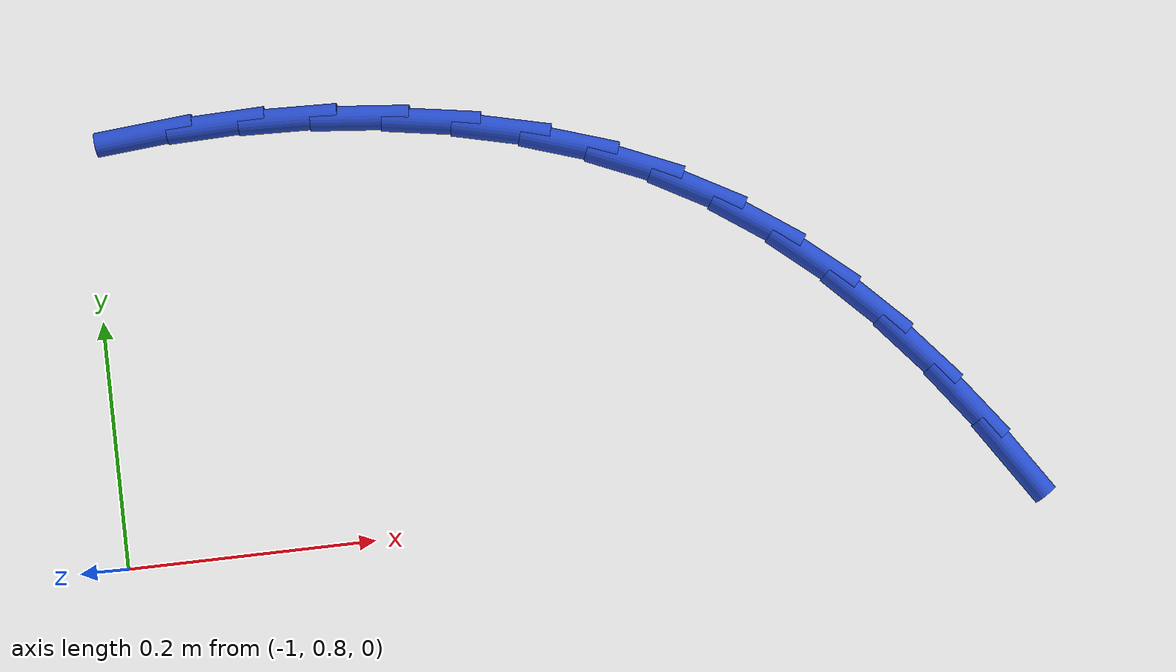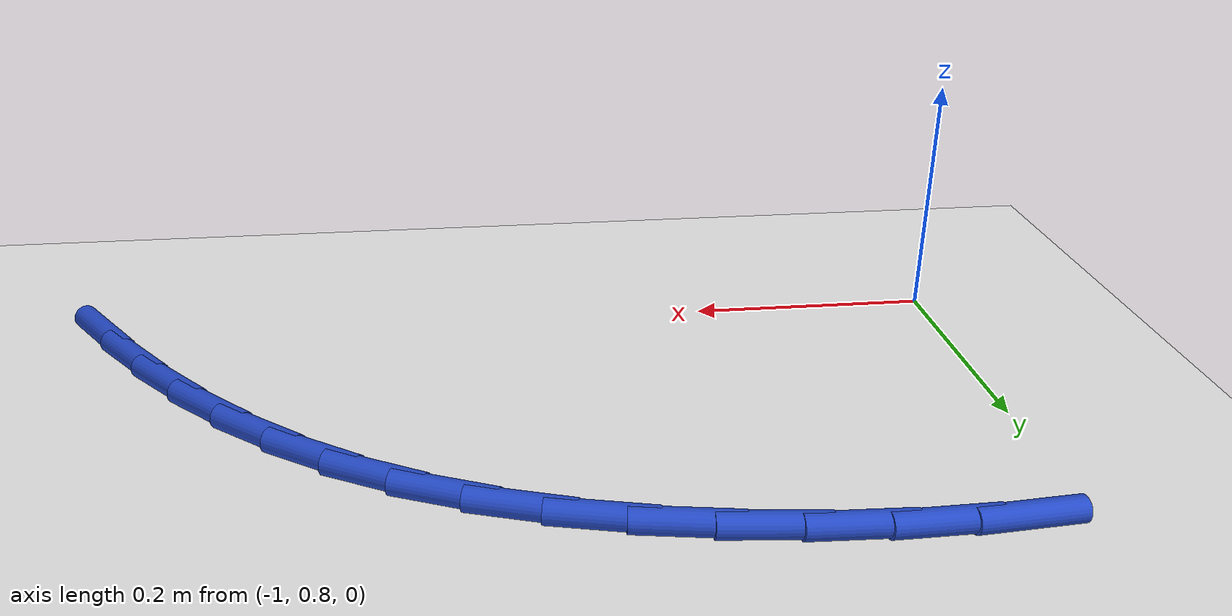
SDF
<sdf version="1.6">
 <world name="default">
  <model name="ground_plane">
   <static>1</static>
   <link name="link">
    <collision name="collision">
     <geometry><plane><normal>0 0 1</normal><size>100 100</size></plane></geometry>
     <surface><friction><ode><mu>100</mu><mu2>50</mu2></ode></friction></surface>
    </collision>
    <visual name="visual">
     <cast_shadows>0</cast_shadows>
     <geometry><plane><normal>0 0 1</normal><size>100 100</size></plane></geometry>
     <material>
      <script><uri>file://media/materials/scripts/gazebo.material</uri><name>Gazebo/WhiteGlow</name></script>
     </material>
    </visual>
   </link>
  </model>
  <model name="line">
   <link name="link_15">
    <pose>-0.2848189422470633 0.8081551420671107 0.01 0 1.57 -0.9923370610261598</pose>
    <collision name="collision">
     <geometry><cylinder><radius>0.01</radius><length>0.08</length></cylinder></geometry>
    </collision>
    <visual name="visual">
     <material>
      <script><name>Gazebo/Blue</name><uri>file://media/materials/scripts/gazebo.material</uri></script>
     </material>
     <geometry><cylinder><radius>0.01</radius><length>0.08</length></cylinder></geometry>
    </visual>
   </link>
   <link name="link_16">
    <pose>-0.31629804059515837 0.856364350469572 0.01 0 1.57 -0.9358912633531111</pose>
    <collision name="collision">
     <geometry><cylinder><radius>0.01</radius><length>0.08</length></cylinder></geometry>
    </collision>
    <visual name="visual">
     <material>
      <script><name>Gazebo/Blue</name><uri>file://media/materials/scripts/gazebo.material</uri></script>
     </material>
     <geometry><cylinder><radius>0.01</radius><length>0.08</length></cylinder></geometry>
    </visual>
   </link>
   <link name="link_17">
    <pose>-0.34995759886817185 0.9020568200030625 0.01 0 1.57 -0.8702012498146</pose>
    <collision name="collision">
     <geometry><cylinder><radius>0.01</radius><length>0.08</length></cylinder></geometry>
    </collision>
    <visual name="visual">
     <material>
      <script><name>Gazebo/Blue</name><uri>file://media/materials/scripts/gazebo.material</uri></script>
     </material>
     <geometry><cylinder><radius>0.01</radius><length>0.08</length></cylinder></geometry>
    </visual>
   </link>
   <link name="link_18">
    <pose>-0.38601360412500463 0.9448123548410056 0.01 0 1.57 -0.7947484036461132</pose>
    <collision name="collision">
     <geometry><cylinder><radius>0.01</radius><length>0.08</length></cylinder></geometry>
    </collision>
    <visual name="visual">
     <material>
      <script><name>Gazebo/Blue</name><uri>file://media/materials/scripts/gazebo.material</uri></script>
     </material>
     <geometry><cylinder><radius>0.01</radius><length>0.08</length></cylinder></geometry>
    </visual>
   </link>
   <link name="link_19">
    <pose>-0.424682043424558 0.9842107591568237 0.01 0 1.57 -0.7093529282862276</pose>
    <collision name="collision">
     <geometry><cylinder><radius>0.01</radius><length>0.08</length></cylinder></geometry>
    </collision>
    <visual name="visual">
     <material>
      <script><name>Gazebo/Blue</name><uri>file://media/materials/scripts/gazebo.material</uri></script>
     </material>
     <geometry><cylinder><radius>0.01</radius><length>0.08</length></cylinder></geometry>
    </visual>
   </link>
   <link name="link_20">
    <pose>-0.4661789038257328 1.0198318371239394 0.01 0 1.57 -0.6144030750205874</pose>
    <collision name="collision">
     <geometry><cylinder><radius>0.01</radius><length>0.08</length></cylinder></geometry>
    </collision>
    <visual name="visual">
     <material>
      <script><name>Gazebo/Blue</name><uri>file://media/materials/scripts/gazebo.material</uri></script>
     </material>
     <geometry><cylinder><radius>0.01</radius><length>0.08</length></cylinder></geometry>
    </visual>
   </link>
   <link name="link_21">
    <pose>-0.5107201723874301 1.0512553929157757 0.01 0 1.57 -0.511617736885149</pose>
    <collision name="collision">
     <geometry><cylinder><radius>0.01</radius><length>0.08</length></cylinder></geometry>
    </collision>
    <visual name="visual">
     <material>
      <script><name>Gazebo/Blue</name><uri>file://media/materials/scripts/gazebo.material</uri></script>
     </material>
     <geometry><cylinder><radius>0.01</radius><length>0.08</length></cylinder></geometry>
    </visual>
   </link>
   <link name="link_22">
    <pose>-0.5584978623965042 1.0780818271680457 0.01 0 1.57 -0.4111871833608595</pose>
    <collision name="collision">
     <geometry><cylinder><radius>0.01</radius><length>0.08</length></cylinder></geometry>
    </collision>
    <visual name="visual">
     <material>
      <script><name>Gazebo/Blue</name><uri>file://media/materials/scripts/gazebo.material</uri></script>
     </material>
     <geometry><cylinder><radius>0.01</radius><length>0.08</length></cylinder></geometry>
    </visual>
   </link>
   <link name="link_23">
    <pose>-0.6093191889082675 1.1002421302229808 0.01 0 1.57 -0.3201352391106939</pose>
    <collision name="collision">
     <geometry><cylinder><radius>0.01</radius><length>0.08</length></cylinder></geometry>
    </collision>
    <visual name="visual">
     <material>
      <script><name>Gazebo/Blue</name><uri>file://media/materials/scripts/gazebo.material</uri></script>
     </material>
     <geometry><cylinder><radius>0.01</radius><length>0.08</length></cylinder></geometry>
    </visual>
   </link>
   <link name="link_24">
    <pose>-0.6626812165580896 1.1179337503425777 0.01 0 1.57 -0.23783345482535906</pose>
    <collision name="collision">
     <geometry><cylinder><radius>0.01</radius><length>0.08</length></cylinder></geometry>
    </collision>
    <visual name="visual">
     <material>
      <script><name>Gazebo/Blue</name><uri>file://media/materials/scripts/gazebo.material</uri></script>
     </material>
     <geometry><cylinder><radius>0.01</radius><length>0.08</length></cylinder></geometry>
    </visual>
   </link>
   <link name="link_25">
    <pose>-0.7180721837794725 1.1313617185978115 0.01 0 1.57 -0.16317597611088236</pose>
    <collision name="collision">
     <geometry><cylinder><radius>0.01</radius><length>0.08</length></cylinder></geometry>
    </collision>
    <visual name="visual">
     <material>
      <script><name>Gazebo/Blue</name><uri>file://media/materials/scripts/gazebo.material</uri></script>
     </material>
     <geometry><cylinder><radius>0.01</radius><length>0.08</length></cylinder></geometry>
    </visual>
   </link>
   <link name="link_26">
    <pose>-0.7749803290059182 1.1407310660596568 0.01 0 1.57 -0.09495479397939957</pose>
    <collision name="collision">
     <geometry><cylinder><radius>0.01</radius><length>0.08</length></cylinder></geometry>
    </collision>
    <visual name="visual">
     <material>
      <script><name>Gazebo/Blue</name><uri>file://media/materials/scripts/gazebo.material</uri></script>
     </material>
     <geometry><cylinder><radius>0.01</radius><length>0.08</length></cylinder></geometry>
    </visual>
   </link>
   <link name="link_27">
    <pose>-0.8328938906709298 1.1462468237990888 0.01 0 1.57 -0.031957752822907276</pose>
    <collision name="collision">
     <geometry><cylinder><radius>0.01</radius><length>0.08</length></cylinder></geometry>
    </collision>
    <visual name="visual">
     <material>
      <script><name>Gazebo/Blue</name><uri>file://media/materials/scripts/gazebo.material</uri></script>
     </material>
     <geometry><cylinder><radius>0.01</radius><length>0.08</length></cylinder></geometry>
    </visual>
   </link>
   <link name="link_28">
    <pose>-0.8913011072080093 1.1481140228870819 0.01 0 1.57 0.026990404589388353</pose>
    <collision name="collision">
     <geometry><cylinder><radius>0.01</radius><length>0.08</length></cylinder></geometry>
    </collision>
    <visual name="visual">
     <material>
      <script><name>Gazebo/Blue</name><uri>file://media/materials/scripts/gazebo.material</uri></script>
     </material>
     <geometry><cylinder><radius>0.01</radius><length>0.08</length></cylinder></geometry>
    </visual>
   </link>
   <link name="link_29">
    <pose>-0.949690217050659 1.1465376943946108 0.01 0 1.57 0.08302488434887442</pose>
    <collision name="collision">
     <geometry><cylinder><radius>0.01</radius><length>0.08</length></cylinder></geometry>
    </collision>
    <visual name="visual">
     <material>
      <script><name>Gazebo/Blue</name><uri>file://media/materials/scripts/gazebo.material</uri></script>
     </material>
     <geometry><cylinder><radius>0.01</radius><length>0.08</length></cylinder></geometry>
    </visual>
   </link>
  </model>
 </world>
</sdf>
